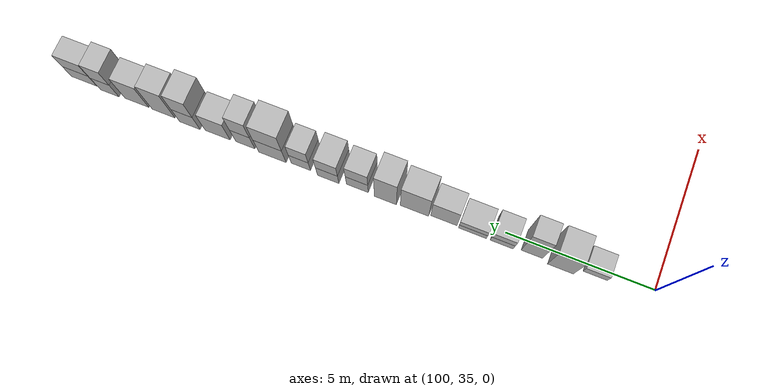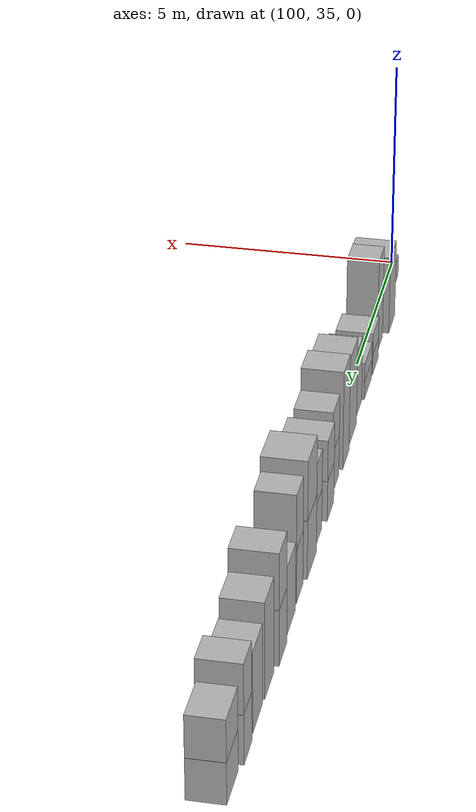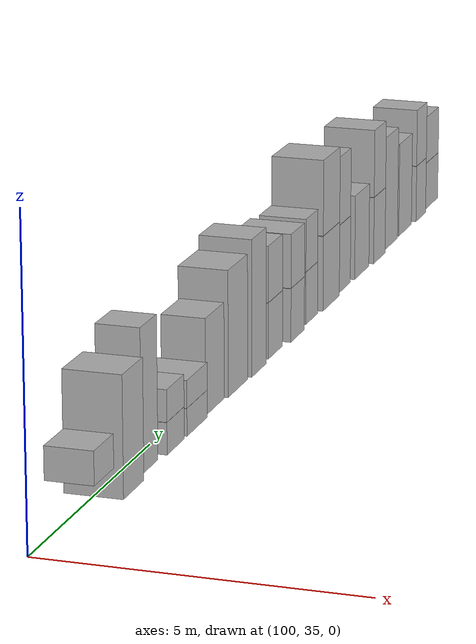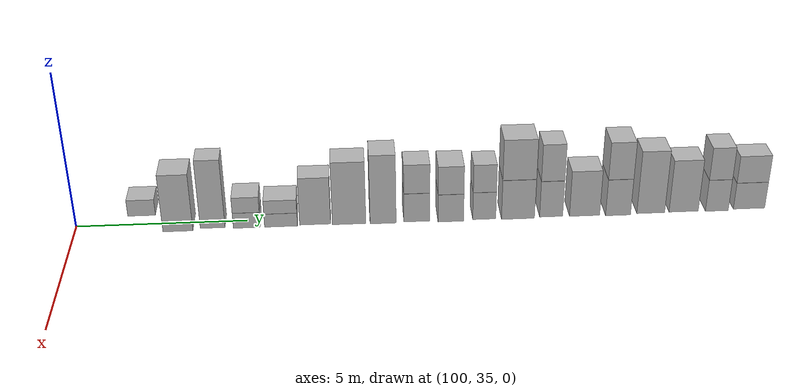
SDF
<sdf version="1.5">
 <world name="default">
  <model name="ground_plane">
   <static>true</static>
   <link name="link">
    <collision name="collision">
     <geometry><plane><normal>0 0 1</normal><size>250 250</size></plane></geometry>
     <surface><friction><ode><mu>1</mu><mu2>1</mu2></ode></friction></surface>
    </collision>
    <visual name="grass">
     <cast_shadows>false</cast_shadows>
     <geometry><mesh><uri>file://grass_plane/meshes/grass_plane.dae</uri></mesh></geometry>
    </visual>
   </link>
  </model>
  <model name="Cardboard_box_top_407">
   <link name="link_0">
    <pose>100 37 0.530519764105 0 0 0</pose>
    <inertial>
     <mass>1</mass>
     <inertia>
      <ixx>0.166667</ixx>
      <ixy>0</ixy>
      <ixz>0</ixz>
      <iyy>0.166667</iyy>
      <iyz>0</iyz>
      <izz>0.166667</izz>
     </inertia>
    </inertial>
    <collision name="collision">
     <geometry>
      <mesh>
       <uri>model://Cardboard_box/meshes/cardboard_box.dae</uri>
       <scale>1.92321238124 2.00071622622 1.32629941026</scale>
      </mesh>
     </geometry>
    </collision>
    <visual name="visual">
     <geometry>
      <mesh>
       <uri>model://Cardboard_box/meshes/cardboard_box.dae</uri>
       <scale>1.92321238124 2.00071622622 1.32629941026</scale>
      </mesh>
     </geometry>
    </visual>
   </link>
   <static>1</static>
  </model>
  <model name="Cardboard_box_408">
   <link name="link_0">
    <pose>100 38 0 0 0 0</pose>
    <inertial>
     <mass>1</mass>
     <inertia>
      <ixx>0.166667</ixx>
      <ixy>0</ixy>
      <ixz>0</ixz>
      <iyy>0.166667</iyy>
      <iyz>0</iyz>
      <izz>0.166667</izz>
     </inertia>
    </inertial>
    <collision name="collision">
     <geometry>
      <mesh>
       <uri>model://Cardboard_box/meshes/cardboard_box.dae</uri>
       <scale>2.33500783695 2.18837487139 4.79486624035</scale>
      </mesh>
     </geometry>
    </collision>
    <visual name="visual">
     <geometry>
      <mesh>
       <uri>model://Cardboard_box/meshes/cardboard_box.dae</uri>
       <scale>2.33500783695 2.18837487139 4.79486624035</scale>
      </mesh>
     </geometry>
    </visual>
   </link>
   <static>1</static>
  </model>
  <model name="Cardboard_box_409">
   <link name="link_0">
    <pose>100 39 0 0 0 0</pose>
    <inertial>
     <mass>1</mass>
     <inertia>
      <ixx>0.166667</ixx>
      <ixy>0</ixy>
      <ixz>0</ixz>
      <iyy>0.166667</iyy>
      <iyz>0</iyz>
      <izz>0.166667</izz>
     </inertia>
    </inertial>
    <collision name="collision">
     <geometry>
      <mesh>
       <uri>model://Cardboard_box/meshes/cardboard_box.dae</uri>
       <scale>1.77538258976 1.81809800558 5.75462145491</scale>
      </mesh>
     </geometry>
    </collision>
    <visual name="visual">
     <geometry>
      <mesh>
       <uri>model://Cardboard_box/meshes/cardboard_box.dae</uri>
       <scale>1.77538258976 1.81809800558 5.75462145491</scale>
      </mesh>
     </geometry>
    </visual>
   </link>
   <static>1</static>
  </model>
  <model name="Cardboard_box_410">
   <link name="link_0">
    <pose>100 40 0 0 0 0</pose>
    <inertial>
     <mass>1</mass>
     <inertia>
      <ixx>0.166667</ixx>
      <ixy>0</ixy>
      <ixz>0</ixz>
      <iyy>0.166667</iyy>
      <iyz>0</iyz>
      <izz>0.166667</izz>
     </inertia>
    </inertial>
    <collision name="collision">
     <geometry>
      <mesh>
       <uri>model://Cardboard_box/meshes/cardboard_box.dae</uri>
       <scale>2.07984412402 1.97972741232 1.30045590522</scale>
      </mesh>
     </geometry>
    </collision>
    <visual name="visual">
     <geometry>
      <mesh>
       <uri>model://Cardboard_box/meshes/cardboard_box.dae</uri>
       <scale>2.07984412402 1.97972741232 1.30045590522</scale>
      </mesh>
     </geometry>
    </visual>
   </link>
   <static>1</static>
  </model>
  <model name="Cardboard_box_top_410">
   <link name="link_0">
    <pose>100 40 0.520182362089 0 0 0</pose>
    <inertial>
     <mass>1</mass>
     <inertia>
      <ixx>0.166667</ixx>
      <ixy>0</ixy>
      <ixz>0</ixz>
      <iyy>0.166667</iyy>
      <iyz>0</iyz>
      <izz>0.166667</izz>
     </inertia>
    </inertial>
    <collision name="collision">
     <geometry>
      <mesh>
       <uri>model://Cardboard_box/meshes/cardboard_box.dae</uri>
       <scale>2.07984412402 1.97972741232 1.30045590522</scale>
      </mesh>
     </geometry>
    </collision>
    <visual name="visual">
     <geometry>
      <mesh>
       <uri>model://Cardboard_box/meshes/cardboard_box.dae</uri>
       <scale>2.07984412402 1.97972741232 1.30045590522</scale>
      </mesh>
     </geometry>
    </visual>
   </link>
   <static>1</static>
  </model>
  <model name="Cardboard_box_411">
   <link name="link_0">
    <pose>100 41 0 0 0 0</pose>
    <inertial>
     <mass>1</mass>
     <inertia>
      <ixx>0.166667</ixx>
      <ixy>0</ixy>
      <ixz>0</ixz>
      <iyy>0.166667</iyy>
      <iyz>0</iyz>
      <izz>0.166667</izz>
     </inertia>
    </inertial>
    <collision name="collision">
     <geometry>
      <mesh>
       <uri>model://Cardboard_box/meshes/cardboard_box.dae</uri>
       <scale>2.0842965941 2.42117331726 1.12790895592</scale>
      </mesh>
     </geometry>
    </collision>
    <visual name="visual">
     <geometry>
      <mesh>
       <uri>model://Cardboard_box/meshes/cardboard_box.dae</uri>
       <scale>2.0842965941 2.42117331726 1.12790895592</scale>
      </mesh>
     </geometry>
    </visual>
   </link>
   <static>1</static>
  </model>
  <model name="Cardboard_box_top_411">
   <link name="link_0">
    <pose>100 41 0.45116358237 0 0 0</pose>
    <inertial>
     <mass>1</mass>
     <inertia>
      <ixx>0.166667</ixx>
      <ixy>0</ixy>
      <ixz>0</ixz>
      <iyy>0.166667</iyy>
      <iyz>0</iyz>
      <izz>0.166667</izz>
     </inertia>
    </inertial>
    <collision name="collision">
     <geometry>
      <mesh>
       <uri>model://Cardboard_box/meshes/cardboard_box.dae</uri>
       <scale>2.0842965941 2.42117331726 1.12790895592</scale>
      </mesh>
     </geometry>
    </collision>
    <visual name="visual">
     <geometry>
      <mesh>
       <uri>model://Cardboard_box/meshes/cardboard_box.dae</uri>
       <scale>2.0842965941 2.42117331726 1.12790895592</scale>
      </mesh>
     </geometry>
    </visual>
   </link>
   <static>1</static>
  </model>
  <model name="Cardboard_box_412">
   <link name="link_0">
    <pose>100 42 0 0 0 0</pose>
    <inertial>
     <mass>1</mass>
     <inertia>
      <ixx>0.166667</ixx>
      <ixy>0</ixy>
      <ixz>0</ixz>
      <iyy>0.166667</iyy>
      <iyz>0</iyz>
      <izz>0.166667</izz>
     </inertia>
    </inertial>
    <collision name="collision">
     <geometry>
      <mesh>
       <uri>model://Cardboard_box/meshes/cardboard_box.dae</uri>
       <scale>1.8409592504 2.28895613321 3.99661508622</scale>
      </mesh>
     </geometry>
    </collision>
    <visual name="visual">
     <geometry>
      <mesh>
       <uri>model://Cardboard_box/meshes/cardboard_box.dae</uri>
       <scale>1.8409592504 2.28895613321 3.99661508622</scale>
      </mesh>
     </geometry>
    </visual>
   </link>
   <static>1</static>
  </model>
  <model name="Cardboard_box_413">
   <link name="link_0">
    <pose>100 43 0 0 0 0</pose>
    <inertial>
     <mass>1</mass>
     <inertia>
      <ixx>0.166667</ixx>
      <ixy>0</ixy>
      <ixz>0</ixz>
      <iyy>0.166667</iyy>
      <iyz>0</iyz>
      <izz>0.166667</izz>
     </inertia>
    </inertial>
    <collision name="collision">
     <geometry>
      <mesh>
       <uri>model://Cardboard_box/meshes/cardboard_box.dae</uri>
       <scale>2.09019207064 2.48233266248 5.29156500356</scale>
      </mesh>
     </geometry>
    </collision>
    <visual name="visual">
     <geometry>
      <mesh>
       <uri>model://Cardboard_box/meshes/cardboard_box.dae</uri>
       <scale>2.09019207064 2.48233266248 5.29156500356</scale>
      </mesh>
     </geometry>
    </visual>
   </link>
   <static>1</static>
  </model>
  <model name="Cardboard_box_414">
   <link name="link_0">
    <pose>100 44 0 0 0 0</pose>
    <inertial>
     <mass>1</mass>
     <inertia>
      <ixx>0.166667</ixx>
      <ixy>0</ixy>
      <ixz>0</ixz>
      <iyy>0.166667</iyy>
      <iyz>0</iyz>
      <izz>0.166667</izz>
     </inertia>
    </inertial>
    <collision name="collision">
     <geometry>
      <mesh>
       <uri>model://Cardboard_box/meshes/cardboard_box.dae</uri>
       <scale>2.24088853613 1.93482093895 5.81927881557</scale>
      </mesh>
     </geometry>
    </collision>
    <visual name="visual">
     <geometry>
      <mesh>
       <uri>model://Cardboard_box/meshes/cardboard_box.dae</uri>
       <scale>2.24088853613 1.93482093895 5.81927881557</scale>
      </mesh>
     </geometry>
    </visual>
   </link>
   <static>1</static>
  </model>
  <model name="Cardboard_box_415">
   <link name="link_0">
    <pose>100 45 0 0 0 0</pose>
    <inertial>
     <mass>1</mass>
     <inertia>
      <ixx>0.166667</ixx>
      <ixy>0</ixy>
      <ixz>0</ixz>
      <iyy>0.166667</iyy>
      <iyz>0</iyz>
      <izz>0.166667</izz>
     </inertia>
    </inertial>
    <collision name="collision">
     <geometry>
      <mesh>
       <uri>model://Cardboard_box/meshes/cardboard_box.dae</uri>
       <scale>2.03829857259 1.93325353072 2.42470689429</scale>
      </mesh>
     </geometry>
    </collision>
    <visual name="visual">
     <geometry>
      <mesh>
       <uri>model://Cardboard_box/meshes/cardboard_box.dae</uri>
       <scale>2.03829857259 1.93325353072 2.42470689429</scale>
      </mesh>
     </geometry>
    </visual>
   </link>
   <static>1</static>
  </model>
  <model name="Cardboard_box_top_415">
   <link name="link_0">
    <pose>100 45 0.969882757716 0 0 0</pose>
    <inertial>
     <mass>1</mass>
     <inertia>
      <ixx>0.166667</ixx>
      <ixy>0</ixy>
      <ixz>0</ixz>
      <iyy>0.166667</iyy>
      <iyz>0</iyz>
      <izz>0.166667</izz>
     </inertia>
    </inertial>
    <collision name="collision">
     <geometry>
      <mesh>
       <uri>model://Cardboard_box/meshes/cardboard_box.dae</uri>
       <scale>2.03829857259 1.93325353072 2.42470689429</scale>
      </mesh>
     </geometry>
    </collision>
    <visual name="visual">
     <geometry>
      <mesh>
       <uri>model://Cardboard_box/meshes/cardboard_box.dae</uri>
       <scale>2.03829857259 1.93325353072 2.42470689429</scale>
      </mesh>
     </geometry>
    </visual>
   </link>
   <static>1</static>
  </model>
  <model name="Cardboard_box_416">
   <link name="link_0">
    <pose>100 46 0 0 0 0</pose>
    <inertial>
     <mass>1</mass>
     <inertia>
      <ixx>0.166667</ixx>
      <ixy>0</ixy>
      <ixz>0</ixz>
      <iyy>0.166667</iyy>
      <iyz>0</iyz>
      <izz>0.166667</izz>
     </inertia>
    </inertial>
    <collision name="collision">
     <geometry>
      <mesh>
       <uri>model://Cardboard_box/meshes/cardboard_box.dae</uri>
       <scale>2.40397871209 1.90805911529 2.34846259408</scale>
      </mesh>
     </geometry>
    </collision>
    <visual name="visual">
     <geometry>
      <mesh>
       <uri>model://Cardboard_box/meshes/cardboard_box.dae</uri>
       <scale>2.40397871209 1.90805911529 2.34846259408</scale>
      </mesh>
     </geometry>
    </visual>
   </link>
   <static>1</static>
  </model>
  <model name="Cardboard_box_top_416">
   <link name="link_0">
    <pose>100 46 0.939385037633 0 0 0</pose>
    <inertial>
     <mass>1</mass>
     <inertia>
      <ixx>0.166667</ixx>
      <ixy>0</ixy>
      <ixz>0</ixz>
      <iyy>0.166667</iyy>
      <iyz>0</iyz>
      <izz>0.166667</izz>
     </inertia>
    </inertial>
    <collision name="collision">
     <geometry>
      <mesh>
       <uri>model://Cardboard_box/meshes/cardboard_box.dae</uri>
       <scale>2.40397871209 1.90805911529 2.34846259408</scale>
      </mesh>
     </geometry>
    </collision>
    <visual name="visual">
     <geometry>
      <mesh>
       <uri>model://Cardboard_box/meshes/cardboard_box.dae</uri>
       <scale>2.40397871209 1.90805911529 2.34846259408</scale>
      </mesh>
     </geometry>
    </visual>
   </link>
   <static>1</static>
  </model>
  <model name="Cardboard_box_417">
   <link name="link_0">
    <pose>100 47 0 0 0 0</pose>
    <inertial>
     <mass>1</mass>
     <inertia>
      <ixx>0.166667</ixx>
      <ixy>0</ixy>
      <ixz>0</ixz>
      <iyy>0.166667</iyy>
      <iyz>0</iyz>
      <izz>0.166667</izz>
     </inertia>
    </inertial>
    <collision name="collision">
     <geometry>
      <mesh>
       <uri>model://Cardboard_box/meshes/cardboard_box.dae</uri>
       <scale>2.09348201467 1.72405041568 2.32906606908</scale>
      </mesh>
     </geometry>
    </collision>
    <visual name="visual">
     <geometry>
      <mesh>
       <uri>model://Cardboard_box/meshes/cardboard_box.dae</uri>
       <scale>2.09348201467 1.72405041568 2.32906606908</scale>
      </mesh>
     </geometry>
    </visual>
   </link>
   <static>1</static>
  </model>
  <model name="Cardboard_box_top_417">
   <link name="link_0">
    <pose>100 47 0.931626427634 0 0 0</pose>
    <inertial>
     <mass>1</mass>
     <inertia>
      <ixx>0.166667</ixx>
      <ixy>0</ixy>
      <ixz>0</ixz>
      <iyy>0.166667</iyy>
      <iyz>0</iyz>
      <izz>0.166667</izz>
     </inertia>
    </inertial>
    <collision name="collision">
     <geometry>
      <mesh>
       <uri>model://Cardboard_box/meshes/cardboard_box.dae</uri>
       <scale>2.09348201467 1.72405041568 2.32906606908</scale>
      </mesh>
     </geometry>
    </collision>
    <visual name="visual">
     <geometry>
      <mesh>
       <uri>model://Cardboard_box/meshes/cardboard_box.dae</uri>
       <scale>2.09348201467 1.72405041568 2.32906606908</scale>
      </mesh>
     </geometry>
    </visual>
   </link>
   <static>1</static>
  </model>
  <model name="Cardboard_box_418">
   <link name="link_0">
    <pose>100 48 0 0 0 0</pose>
    <inertial>
     <mass>1</mass>
     <inertia>
      <ixx>0.166667</ixx>
      <ixy>0</ixy>
      <ixz>0</ixz>
      <iyy>0.166667</iyy>
      <iyz>0</iyz>
      <izz>0.166667</izz>
     </inertia>
    </inertial>
    <collision name="collision">
     <geometry>
      <mesh>
       <uri>model://Cardboard_box/meshes/cardboard_box.dae</uri>
       <scale>2.33213269415 2.47287777833 3.3610383322</scale>
      </mesh>
     </geometry>
    </collision>
    <visual name="visual">
     <geometry>
      <mesh>
       <uri>model://Cardboard_box/meshes/cardboard_box.dae</uri>
       <scale>2.33213269415 2.47287777833 3.3610383322</scale>
      </mesh>
     </geometry>
    </visual>
   </link>
   <static>1</static>
  </model>
  <model name="Cardboard_box_top_418">
   <link name="link_0">
    <pose>100 48 1.34441533288 0 0 0</pose>
    <inertial>
     <mass>1</mass>
     <inertia>
      <ixx>0.166667</ixx>
      <ixy>0</ixy>
      <ixz>0</ixz>
      <iyy>0.166667</iyy>
      <iyz>0</iyz>
      <izz>0.166667</izz>
     </inertia>
    </inertial>
    <collision name="collision">
     <geometry>
      <mesh>
       <uri>model://Cardboard_box/meshes/cardboard_box.dae</uri>
       <scale>2.33213269415 2.47287777833 3.3610383322</scale>
      </mesh>
     </geometry>
    </collision>
    <visual name="visual">
     <geometry>
      <mesh>
       <uri>model://Cardboard_box/meshes/cardboard_box.dae</uri>
       <scale>2.33213269415 2.47287777833 3.3610383322</scale>
      </mesh>
     </geometry>
    </visual>
   </link>
   <static>1</static>
  </model>
  <model name="Cardboard_box_419">
   <link name="link_0">
    <pose>100 49 0 0 0 0</pose>
    <inertial>
     <mass>1</mass>
     <inertia>
      <ixx>0.166667</ixx>
      <ixy>0</ixy>
      <ixz>0</ixz>
      <iyy>0.166667</iyy>
      <iyz>0</iyz>
      <izz>0.166667</izz>
     </inertia>
    </inertial>
    <collision name="collision">
     <geometry>
      <mesh>
       <uri>model://Cardboard_box/meshes/cardboard_box.dae</uri>
       <scale>2.06923000769 1.73955813896 3.07880787568</scale>
      </mesh>
     </geometry>
    </collision>
    <visual name="visual">
     <geometry>
      <mesh>
       <uri>model://Cardboard_box/meshes/cardboard_box.dae</uri>
       <scale>2.06923000769 1.73955813896 3.07880787568</scale>
      </mesh>
     </geometry>
    </visual>
   </link>
   <static>1</static>
  </model>
  <model name="Cardboard_box_top_419">
   <link name="link_0">
    <pose>100 49 1.23152315027 0 0 0</pose>
    <inertial>
     <mass>1</mass>
     <inertia>
      <ixx>0.166667</ixx>
      <ixy>0</ixy>
      <ixz>0</ixz>
      <iyy>0.166667</iyy>
      <iyz>0</iyz>
      <izz>0.166667</izz>
     </inertia>
    </inertial>
    <collision name="collision">
     <geometry>
      <mesh>
       <uri>model://Cardboard_box/meshes/cardboard_box.dae</uri>
       <scale>2.06923000769 1.73955813896 3.07880787568</scale>
      </mesh>
     </geometry>
    </collision>
    <visual name="visual">
     <geometry>
      <mesh>
       <uri>model://Cardboard_box/meshes/cardboard_box.dae</uri>
       <scale>2.06923000769 1.73955813896 3.07880787568</scale>
      </mesh>
     </geometry>
    </visual>
   </link>
   <static>1</static>
  </model>
  <model name="Cardboard_box_420">
   <link name="link_0">
    <pose>100 50 0 0 0 0</pose>
    <inertial>
     <mass>1</mass>
     <inertia>
      <ixx>0.166667</ixx>
      <ixy>0</ixy>
      <ixz>0</ixz>
      <iyy>0.166667</iyy>
      <iyz>0</iyz>
      <izz>0.166667</izz>
     </inertia>
    </inertial>
    <collision name="collision">
     <geometry>
      <mesh>
       <uri>model://Cardboard_box/meshes/cardboard_box.dae</uri>
       <scale>2.17905125538 2.28582549925 3.86741352198</scale>
      </mesh>
     </geometry>
    </collision>
    <visual name="visual">
     <geometry>
      <mesh>
       <uri>model://Cardboard_box/meshes/cardboard_box.dae</uri>
       <scale>2.17905125538 2.28582549925 3.86741352198</scale>
      </mesh>
     </geometry>
    </visual>
   </link>
   <static>1</static>
  </model>
  <model name="Cardboard_box_421">
   <link name="link_0">
    <pose>100 51 0 0 0 0</pose>
    <inertial>
     <mass>1</mass>
     <inertia>
      <ixx>0.166667</ixx>
      <ixy>0</ixy>
      <ixz>0</ixz>
      <iyy>0.166667</iyy>
      <iyz>0</iyz>
      <izz>0.166667</izz>
     </inertia>
    </inertial>
    <collision name="collision">
     <geometry>
      <mesh>
       <uri>model://Cardboard_box/meshes/cardboard_box.dae</uri>
       <scale>2.37978571682 1.88988939996 3.11235334684</scale>
      </mesh>
     </geometry>
    </collision>
    <visual name="visual">
     <geometry>
      <mesh>
       <uri>model://Cardboard_box/meshes/cardboard_box.dae</uri>
       <scale>2.37978571682 1.88988939996 3.11235334684</scale>
      </mesh>
     </geometry>
    </visual>
   </link>
   <static>1</static>
  </model>
  <model name="Cardboard_box_top_421">
   <link name="link_0">
    <pose>100 51 1.24494133874 0 0 0</pose>
    <inertial>
     <mass>1</mass>
     <inertia>
      <ixx>0.166667</ixx>
      <ixy>0</ixy>
      <ixz>0</ixz>
      <iyy>0.166667</iyy>
      <iyz>0</iyz>
      <izz>0.166667</izz>
     </inertia>
    </inertial>
    <collision name="collision">
     <geometry>
      <mesh>
       <uri>model://Cardboard_box/meshes/cardboard_box.dae</uri>
       <scale>2.37978571682 1.88988939996 3.11235334684</scale>
      </mesh>
     </geometry>
    </collision>
    <visual name="visual">
     <geometry>
      <mesh>
       <uri>model://Cardboard_box/meshes/cardboard_box.dae</uri>
       <scale>2.37978571682 1.88988939996 3.11235334684</scale>
      </mesh>
     </geometry>
    </visual>
   </link>
   <static>1</static>
  </model>
  <model name="Cardboard_box_422">
   <link name="link_0">
    <pose>100 52 0 0 0 0</pose>
    <inertial>
     <mass>1</mass>
     <inertia>
      <ixx>0.166667</ixx>
      <ixy>0</ixy>
      <ixz>0</ixz>
      <iyy>0.166667</iyy>
      <iyz>0</iyz>
      <izz>0.166667</izz>
     </inertia>
    </inertial>
    <collision name="collision">
     <geometry>
      <mesh>
       <uri>model://Cardboard_box/meshes/cardboard_box.dae</uri>
       <scale>2.08489114763 2.12100789535 5.32735070327</scale>
      </mesh>
     </geometry>
    </collision>
    <visual name="visual">
     <geometry>
      <mesh>
       <uri>model://Cardboard_box/meshes/cardboard_box.dae</uri>
       <scale>2.08489114763 2.12100789535 5.32735070327</scale>
      </mesh>
     </geometry>
    </visual>
   </link>
   <static>1</static>
  </model>
  <model name="Cardboard_box_423">
   <link name="link_0">
    <pose>100 53 0 0 0 0</pose>
    <inertial>
     <mass>1</mass>
     <inertia>
      <ixx>0.166667</ixx>
      <ixy>0</ixy>
      <ixz>0</ixz>
      <iyy>0.166667</iyy>
      <iyz>0</iyz>
      <izz>0.166667</izz>
     </inertia>
    </inertial>
    <collision name="collision">
     <geometry>
      <mesh>
       <uri>model://Cardboard_box/meshes/cardboard_box.dae</uri>
       <scale>2.01332583459 2.23113207362 4.44072523929</scale>
      </mesh>
     </geometry>
    </collision>
    <visual name="visual">
     <geometry>
      <mesh>
       <uri>model://Cardboard_box/meshes/cardboard_box.dae</uri>
       <scale>2.01332583459 2.23113207362 4.44072523929</scale>
      </mesh>
     </geometry>
    </visual>
   </link>
   <static>1</static>
  </model>
  <model name="Cardboard_box_424">
   <link name="link_0">
    <pose>100 54 0 0 0 0</pose>
    <inertial>
     <mass>1</mass>
     <inertia>
      <ixx>0.166667</ixx>
      <ixy>0</ixy>
      <ixz>0</ixz>
      <iyy>0.166667</iyy>
      <iyz>0</iyz>
      <izz>0.166667</izz>
     </inertia>
    </inertial>
    <collision name="collision">
     <geometry>
      <mesh>
       <uri>model://Cardboard_box/meshes/cardboard_box.dae</uri>
       <scale>2.17425017739 1.74875063233 2.71126814086</scale>
      </mesh>
     </geometry>
    </collision>
    <visual name="visual">
     <geometry>
      <mesh>
       <uri>model://Cardboard_box/meshes/cardboard_box.dae</uri>
       <scale>2.17425017739 1.74875063233 2.71126814086</scale>
      </mesh>
     </geometry>
    </visual>
   </link>
   <static>1</static>
  </model>
  <model name="Cardboard_box_top_424">
   <link name="link_0">
    <pose>100 54 1.08450725634 0 0 0</pose>
    <inertial>
     <mass>1</mass>
     <inertia>
      <ixx>0.166667</ixx>
      <ixy>0</ixy>
      <ixz>0</ixz>
      <iyy>0.166667</iyy>
      <iyz>0</iyz>
      <izz>0.166667</izz>
     </inertia>
    </inertial>
    <collision name="collision">
     <geometry>
      <mesh>
       <uri>model://Cardboard_box/meshes/cardboard_box.dae</uri>
       <scale>2.17425017739 1.74875063233 2.71126814086</scale>
      </mesh>
     </geometry>
    </collision>
    <visual name="visual">
     <geometry>
      <mesh>
       <uri>model://Cardboard_box/meshes/cardboard_box.dae</uri>
       <scale>2.17425017739 1.74875063233 2.71126814086</scale>
      </mesh>
     </geometry>
    </visual>
   </link>
   <static>1</static>
  </model>
  <model name="Cardboard_box_425">
   <link name="link_0">
    <pose>100 55 0 0 0 0</pose>
    <inertial>
     <mass>1</mass>
     <inertia>
      <ixx>0.166667</ixx>
      <ixy>0</ixy>
      <ixz>0</ixz>
      <iyy>0.166667</iyy>
      <iyz>0</iyz>
      <izz>0.166667</izz>
     </inertia>
    </inertial>
    <collision name="collision">
     <geometry>
      <mesh>
       <uri>model://Cardboard_box/meshes/cardboard_box.dae</uri>
       <scale>1.83602182327 2.40849246043 2.2718871975</scale>
      </mesh>
     </geometry>
    </collision>
    <visual name="visual">
     <geometry>
      <mesh>
       <uri>model://Cardboard_box/meshes/cardboard_box.dae</uri>
       <scale>1.83602182327 2.40849246043 2.2718871975</scale>
      </mesh>
     </geometry>
    </visual>
   </link>
   <static>1</static>
  </model>
  <model name="Cardboard_box_top_425">
   <link name="link_0">
    <pose>100 55 0.908754879002 0 0 0</pose>
    <inertial>
     <mass>1</mass>
     <inertia>
      <ixx>0.166667</ixx>
      <ixy>0</ixy>
      <ixz>0</ixz>
      <iyy>0.166667</iyy>
      <iyz>0</iyz>
      <izz>0.166667</izz>
     </inertia>
    </inertial>
    <collision name="collision">
     <geometry>
      <mesh>
       <uri>model://Cardboard_box/meshes/cardboard_box.dae</uri>
       <scale>1.83602182327 2.40849246043 2.2718871975</scale>
      </mesh>
     </geometry>
    </collision>
    <visual name="visual">
     <geometry>
      <mesh>
       <uri>model://Cardboard_box/meshes/cardboard_box.dae</uri>
       <scale>1.83602182327 2.40849246043 2.2718871975</scale>
      </mesh>
     </geometry>
    </visual>
   </link>
   <static>1</static>
  </model>
 </world>
</sdf>
